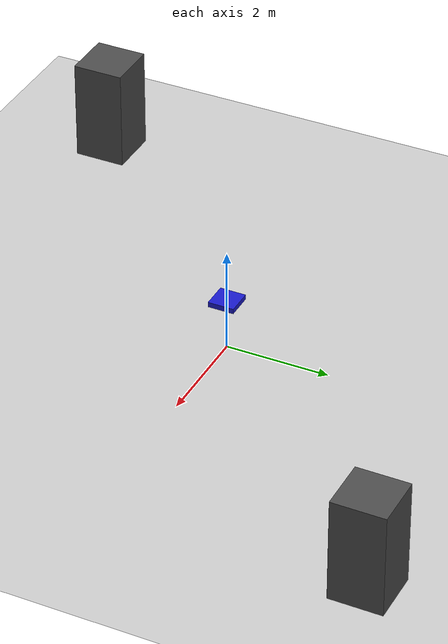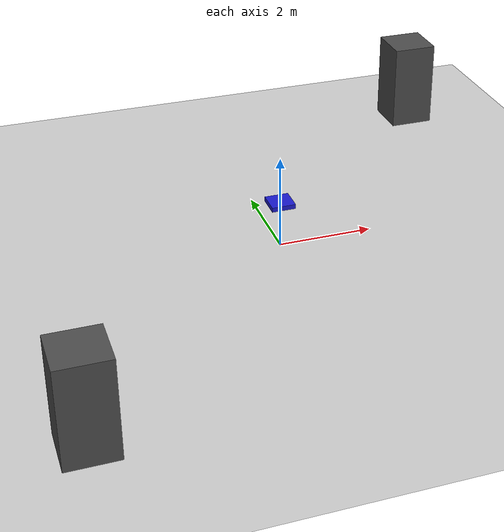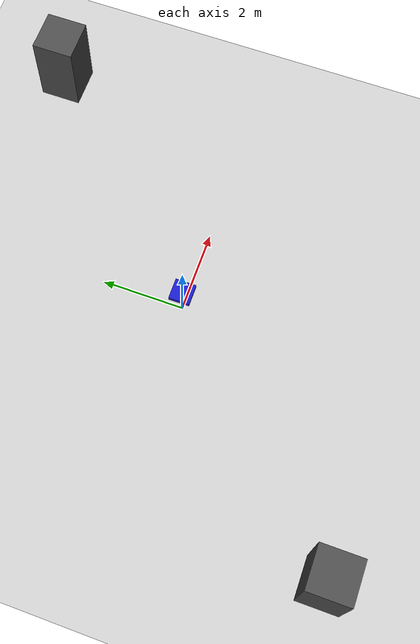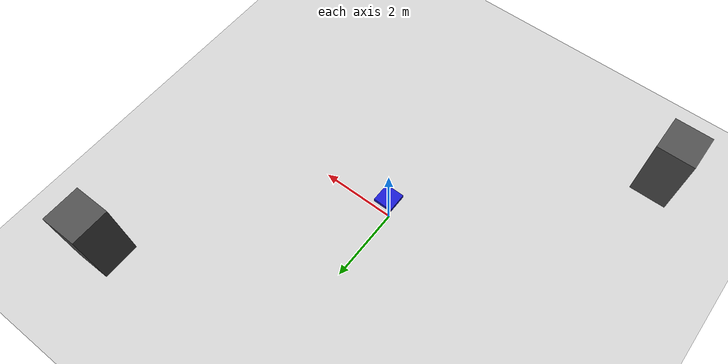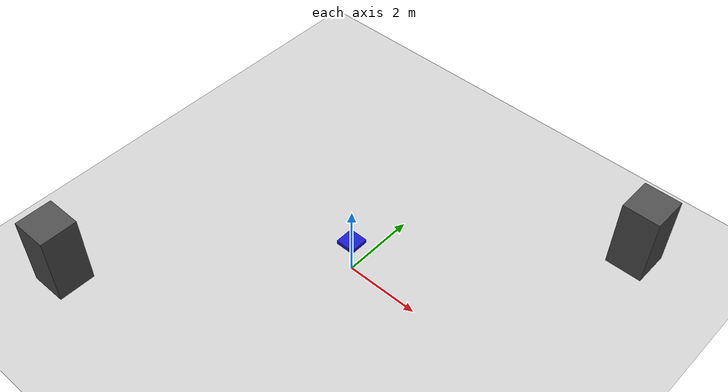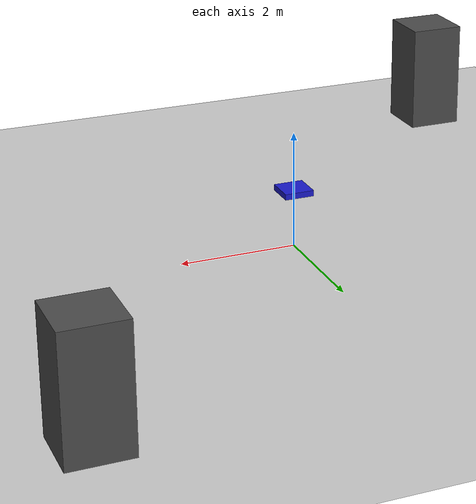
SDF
<?xml version="1.0" ?>
<sdf version="1.6">
  <world name="drone_world">
    <physics type="ode">
      <max_step_size>0.001</max_step_size>
      <real_time_factor>1</real_time_factor>
      <real_time_update_rate>1000</real_time_update_rate>
    </physics>

    <!-- Include default models -->
    <include>
      <uri>model://sun</uri>
    </include>
    <include>
      <uri>model://ground_plane</uri>
    </include>

    <!-- Add some simple obstacles -->
    <model name="box1">
      <static>true</static>
      <pose>5 5 1 0 0 0</pose>
      <link name="link">
        <collision name="collision">
          <geometry>
            <box>
              <size>1 1 2</size>
            </box>
          </geometry>
        </collision>
        <visual name="visual">
          <geometry>
            <box>
              <size>1 1 2</size>
            </box>
          </geometry>
          <material>
            <ambient>0.3 0.3 0.3 1</ambient>
            <diffuse>0.3 0.3 0.3 1</diffuse>
          </material>
        </visual>
      </link>
    </model>

    <model name="box2">
      <static>true</static>
      <pose>-5 -5 1 0 0 0</pose>
      <link name="link">
        <collision name="collision">
          <geometry>
            <box>
              <size>1 1 2</size>
            </box>
          </geometry>
        </collision>
        <visual name="visual">
          <geometry>
            <box>
              <size>1 1 2</size>
            </box>
          </geometry>
          <material>
            <ambient>0.3 0.3 0.3 1</ambient>
            <diffuse>0.3 0.3 0.3 1</diffuse>
          </material>
        </visual>
      </link>
    </model>

    <!-- Add a simple drone model -->
    <model name="drone_0">
      <pose>0 0 1 0 0 0</pose>
      <link name="base_link">
        <inertial>
          <mass>1.5</mass>
          <inertia>
            <ixx>0.0347563</ixx>
            <iyy>0.0458929</iyy>
            <izz>0.0977</izz>
            <ixy>0</ixy>
            <ixz>0</ixz>
            <iyz>0</iyz>
          </inertia>
        </inertial>
        <collision name="collision">
          <geometry>
            <box>
              <size>0.5 0.5 0.1</size>
            </box>
          </geometry>
        </collision>
        <visual name="visual">
          <geometry>
            <box>
              <size>0.5 0.5 0.1</size>
            </box>
          </geometry>
          <material>
            <ambient>0.1 0.1 0.8 1</ambient>
            <diffuse>0.1 0.1 0.8 1</diffuse>
          </material>
        </visual>
      </link>
    </model>
  </world>
</sdf>
